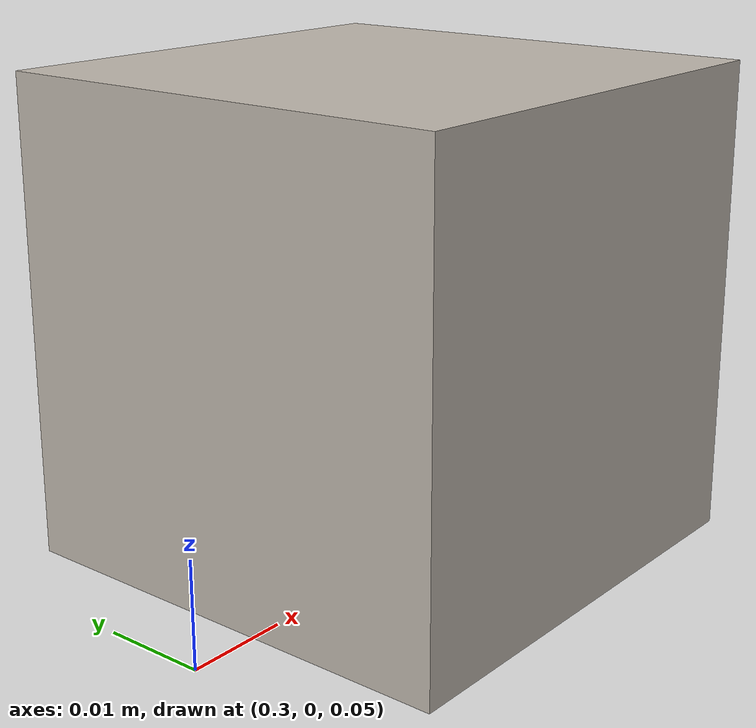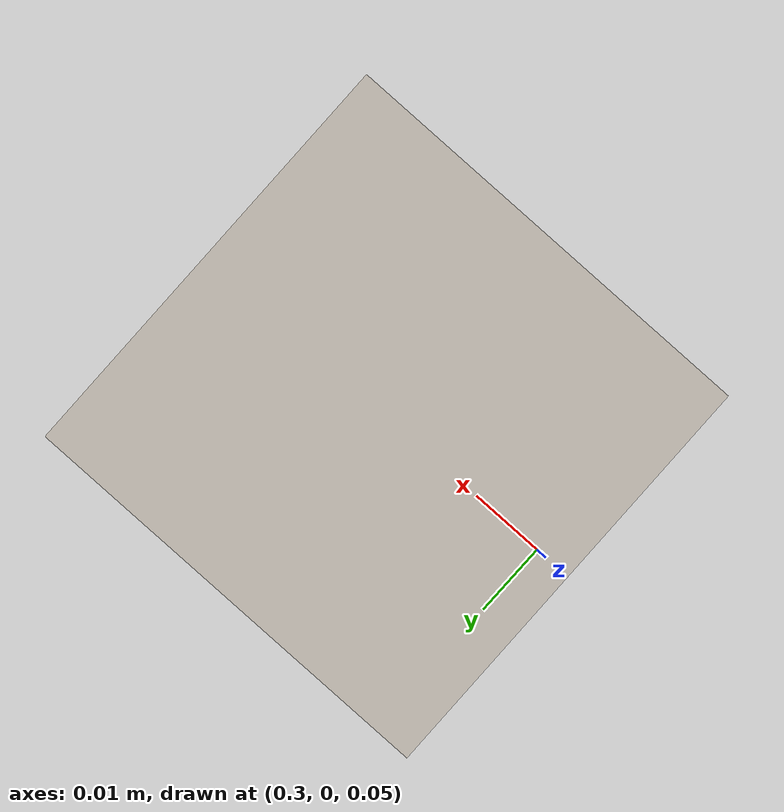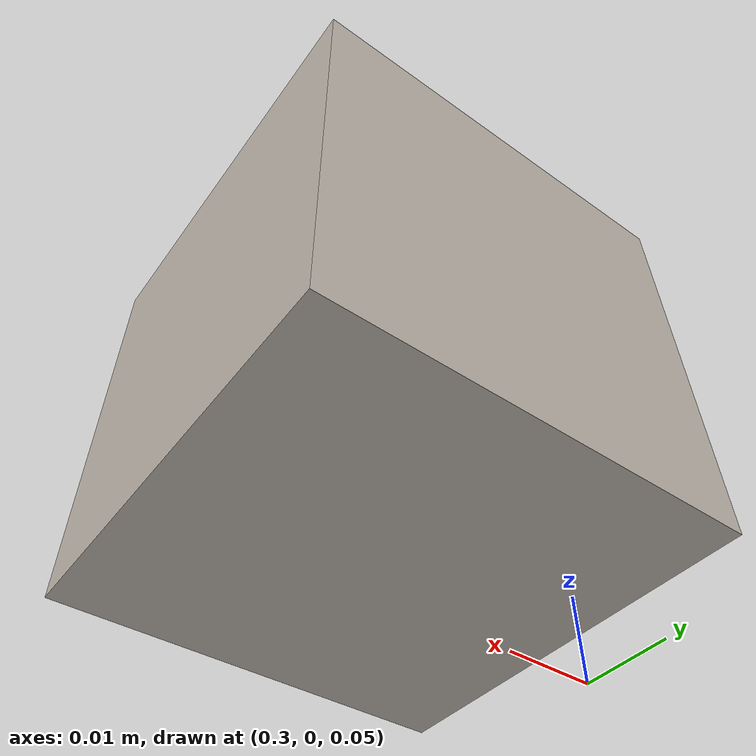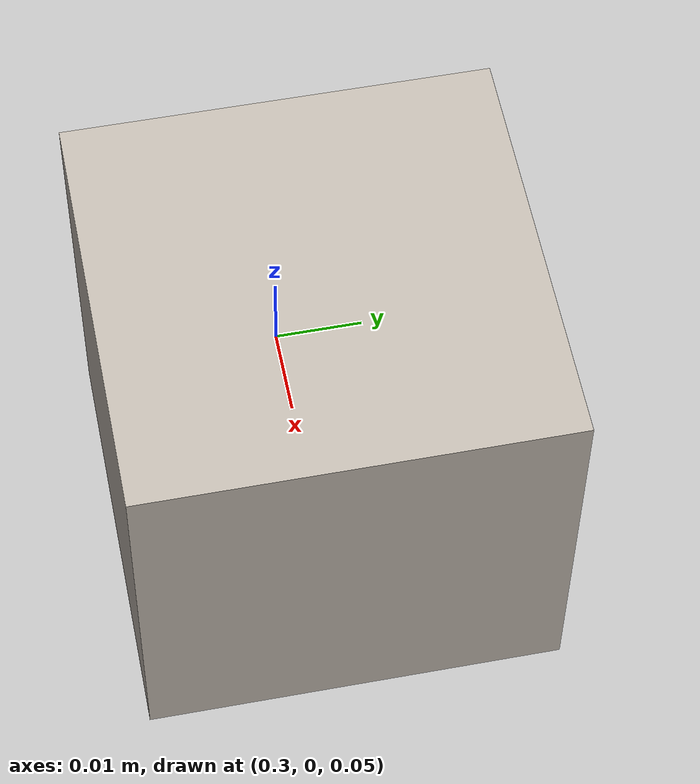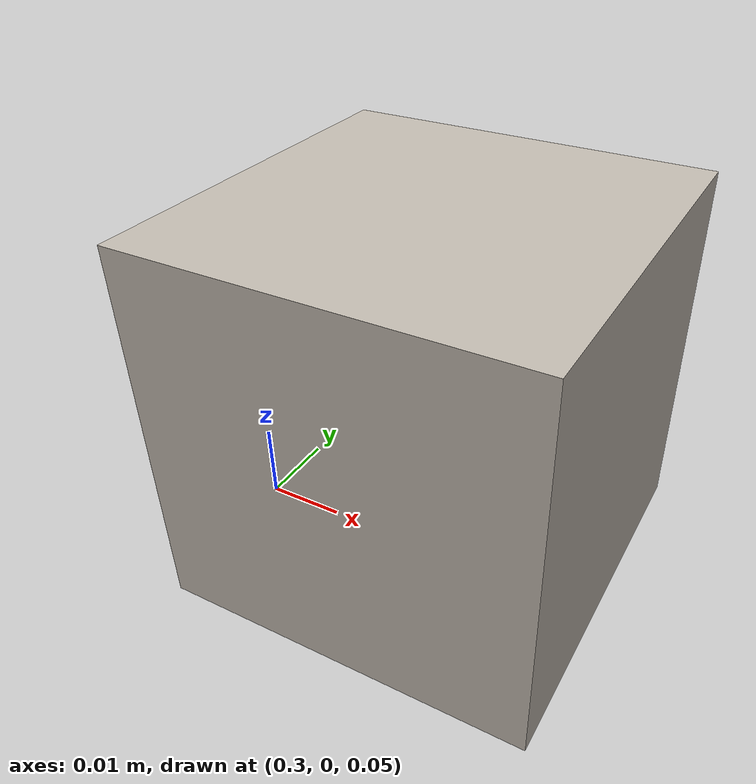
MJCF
<mujoco>
  <asset>
    <texture name="cube" type="cube"
             fileup="../common_assets/reorientation_cube_textures/fileup.png"
             fileback="../common_assets/reorientation_cube_textures/fileback.png"
             filedown="../common_assets/reorientation_cube_textures/filedown.png"
             filefront="../common_assets/reorientation_cube_textures/filefront.png"
             fileleft="../common_assets/reorientation_cube_textures/fileleft.png"
             fileright="../common_assets/reorientation_cube_textures/fileright.png"/>
    <material name="cube" texture="cube"/>
    <texture name="graycube" type="cube"
            fileup="../common_assets/reorientation_cube_textures/grayup.png"
             fileback="../common_assets/reorientation_cube_textures/grayback.png"
             filedown="../common_assets/reorientation_cube_textures/graydown.png"
             filefront="../common_assets/reorientation_cube_textures/grayfront.png"
             fileleft="../common_assets/reorientation_cube_textures/grayleft.png"
             fileright="../common_assets/reorientation_cube_textures/grayright.png"/>
    <material name="graycube" texture="graycube"/>
  </asset>

  <!-- Manipulated Cube (Goal cube found in task.xml) -->
  <worldbody>
    <light pos="0 0 1"/>
    <!-- original: pos="0.325 0.0 0.075" quat="0.707 0.707 0 0"-->
    <body name="cube" pos="0.325 0.0 0.075" quat="0.707 0.707 0 0">
      <freejoint/>
      <geom name="cube" type="box" size=".022 .022 .022" mass=".126" material="cube"/>
    </body>
  </worldbody>

   <sensor>
        <framepos name="cube_position" objtype="body" objname="cube"/>
        <framequat name="cube_orientation" objtype="body" objname="cube"/>
        <framelinvel name="cube_linear_velocity" objtype="body" objname="cube"/>
        <frameangvel name="cube_angular_velocity" objtype="body" objname="cube"/>
    </sensor>
</mujoco>
